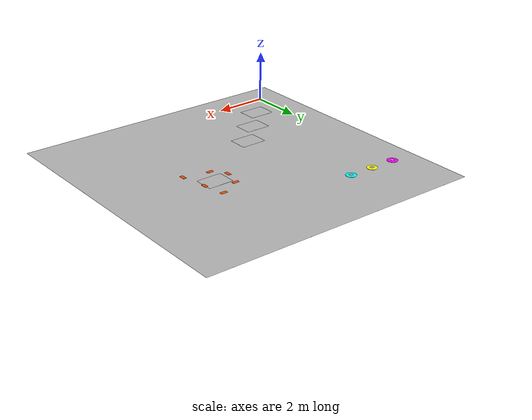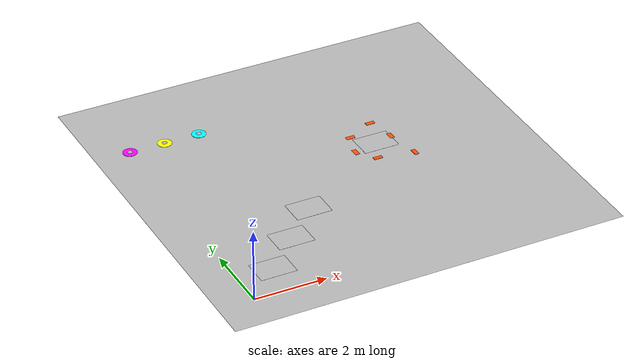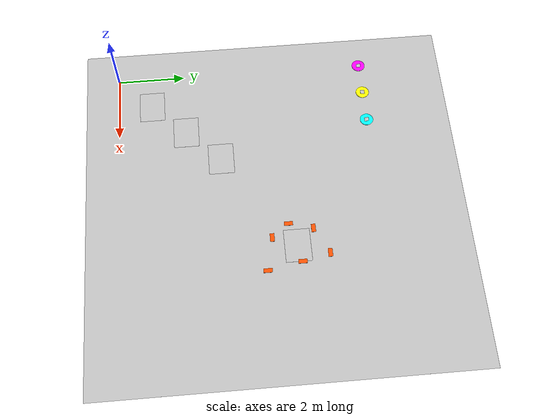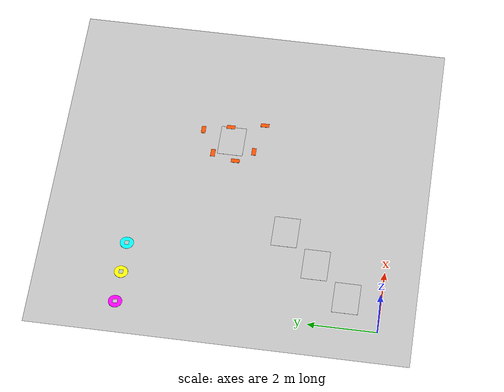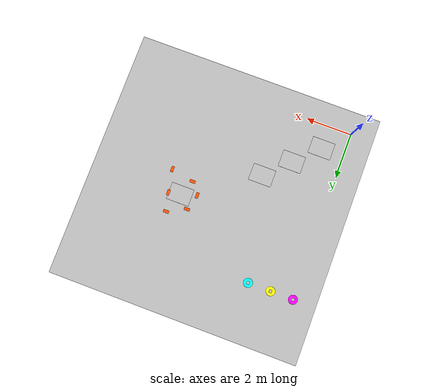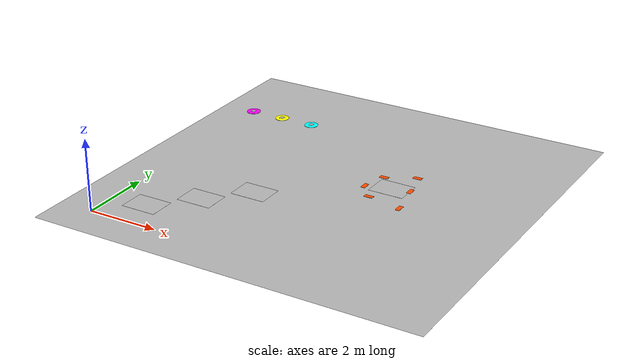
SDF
<sdf version="1.5">
 <world name="default">
  <include><uri>model://sun</uri></include>
  <include><uri>model://aruco_206</uri><pose>4.5 4.5 0 0 0 0</pose></include>
  <include><uri>model://aruco_201</uri><pose>6 5 0.005 0 0 0</pose></include>
  <include><uri>model://boat_a</uri><name>boat_a_1</name><pose>6.5 5.1 0 0 0 0</pose></include>
  <include><uri>model://boat_a</uri><name>boat_a_2</name><pose>6.3 5.9 0 0 0 1.5707963267948966</pose></include>
  <include><uri>model://boat_a</uri><name>boat_a_3</name><pose>5.3 4.8 0 0 0 0</pose></include>
  <include><uri>model://boat_a</uri><name>boat_a_4</name><pose>5.5 5.5 0 0 0 1.5707963267948966</pose></include>
  <include><uri>model://boat_a</uri><name>boat_a_5</name><pose>6.7 4.1 0 0 0 0</pose></include>
  <include><uri>model://boat_a</uri><name>boat_a_6</name><pose>5.7 4.3 0 0 0 1.5707963267948966</pose></include>
  <include><uri>model://aruco_203</uri><pose>0 7.5 0 0 0 0</pose></include>
  <include><uri>model://aruco_204</uri><pose>1 7.5 0 0 0 0</pose></include>
  <include><uri>model://aruco_205</uri><pose>2 7.5 0 0 0 0</pose></include>
  <include><uri>model://rus_flag2</uri><pose>1 1 0.01 0 0 0</pose></include>
  <include><uri>model://france_flag</uri><pose>2 2 0.01 0 0 0</pose></include>
  <include><uri>model://svets_flag</uri><pose>3 3 0.01 0 0 0</pose></include>
  <scene>
   <ambient>0.8 0.8 0.8 1</ambient>
   <background>0.8 0.9 1 1</background>
   <shadows>false</shadows>
   <grid>false</grid>
   <origin_visual>false</origin_visual>
  </scene>
  <physics name="default_physics" default="0" type="ode">
   <gravity>0 0 -9.8066</gravity>
   <ode>
    <solver>
     <type>quick</type>
     <iters>10</iters>
     <sor>1.3</sor>
     <use_dynamic_moi_rescaling>0</use_dynamic_moi_rescaling>
    </solver>
    <constraints>
     <cfm>0</cfm>
     <erp>0.2</erp>
     <contact_max_correcting_vel>100</contact_max_correcting_vel>
     <contact_surface_layer>0.001</contact_surface_layer>
    </constraints>
   </ode>
   <max_step_size>0.004</max_step_size>
   <real_time_factor>1</real_time_factor>
   <real_time_update_rate>250</real_time_update_rate>
   <magnetic_field>6.0e-6 2.3e-5 -4.2e-5</magnetic_field>
  </physics>
 </world>
</sdf>

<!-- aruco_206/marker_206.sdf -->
<sdf version="1.5">
    <model name="aruco_206">
        <static>true</static>
        <link name="marker_206_link">
            <pose>0 0 1e-3 0 0 1.5707963267948966</pose>
            <visual name="visual_marker_206">
                <cast_shadows>false</cast_shadows>
                <geometry>
                    <box>
                        <size>11 11 1e-4</size>
                    </box>
                </geometry>
                <material>
                    <script>
                        <uri>model://aruco_206/materials/scripts</uri>
                        <uri>model://aruco_206/materials/textures</uri>
                        <name>aruco/marker_206</name>
                    </script>
                </material>
            </visual>
        </link>
    </model>
</sdf>

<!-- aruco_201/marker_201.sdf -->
<sdf version="1.5">
  <model name="aruco_201">
    <static>true</static>
    <link name="marker_201_link">
      <pose>0 0 1e-3 0 0 1.5707963267948966</pose>
      <visual name="visual_marker_201">
        <cast_shadows>false</cast_shadows>
        <geometry>
          <box>
            <size>0.75 1 1e-3</size>
          </box>
        </geometry>
        <material>
          <script>
            <uri>model://aruco_201/materials/scripts</uri>
            <uri>model://aruco_201/materials/textures</uri>
            <name>aruco/marker_201</name>
          </script>
        </material>
      </visual>
    </link>
  </model>
</sdf>

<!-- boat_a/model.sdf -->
<sdf version='1.6'>
  <model name='boat_a'>
    <link name='link'>
      <inertial>
        <mass>1</mass>
        <inertia>
          <ixx>0.166667</ixx>
          <ixy>0</ixy>
          <ixz>0</ixz>
          <iyy>0.166667</iyy>
          <iyz>0</iyz>
          <izz>0.166667</izz>
        </inertia>
        <pose frame=''>0 0 0 0 -0 0</pose>
      </inertial>
      <self_collide>0</self_collide>
      <enable_wind>0</enable_wind>
      <kinematic>0</kinematic>
      <pose frame=''>0 0 0 0 -0 0</pose>
      <gravity>1</gravity>
      <visual name='visual'>
        <geometry>
          <box>
            <size>0.125 0.25 0.02</size>
          </box>
        </geometry>
        <material>
          <script>
            <name>Gazebo/Grey</name>
            <uri>file://media/materials/scripts/gazebo.material</uri>
          </script>
          <shader type='pixel'>
            <normal_map>__default__</normal_map>
          </shader>
          <ambient>1 0.3 0 1</ambient>
          <diffuse>1 0.3 0 1</diffuse>
          <specular>0 0 0 1</specular>
          <emissive>0 0 0 1</emissive>
        </material>
        <pose frame=''>0 0 0 0 -0 0</pose>
        <transparency>0</transparency>
        <cast_shadows>1</cast_shadows>
      </visual>
      <collision name='collision'>
        <laser_retro>0</laser_retro>
        <max_contacts>10</max_contacts>
        <pose frame=''>0 0 0 0 -0 0</pose>
        <geometry>
          <box>
            <size>0.125 0.25 0.02</size>
          </box>
        </geometry>
        <surface>
          <friction>
            <ode>
              <mu>1</mu>
              <mu2>1</mu2>
              <fdir1>0 0 0</fdir1>
              <slip1>0</slip1>
              <slip2>0</slip2>
            </ode>
            <torsional>
              <coefficient>1</coefficient>
              <patch_radius>0</patch_radius>
              <surface_radius>0</surface_radius>
              <use_patch_radius>1</use_patch_radius>
              <ode>
                <slip>0</slip>
              </ode>
            </torsional>
          </friction>
          <bounce>
            <restitution_coefficient>0</restitution_coefficient>
            <threshold>1e+06</threshold>
          </bounce>
          <contact>
            <collide_without_contact>0</collide_without_contact>
            <collide_without_contact_bitmask>1</collide_without_contact_bitmask>
            <collide_bitmask>1</collide_bitmask>
            <ode>
              <soft_cfm>0</soft_cfm>
              <soft_erp>0.2</soft_erp>
              <kp>1e+13</kp>
              <kd>1</kd>
              <max_vel>0.01</max_vel>
              <min_depth>0</min_depth>
            </ode>
            <bullet>
              <split_impulse>1</split_impulse>
              <split_impulse_penetration_threshold>-0.01</split_impulse_penetration_threshold>
              <soft_cfm>0</soft_cfm>
              <soft_erp>0.2</soft_erp>
              <kp>1e+13</kp>
              <kd>1</kd>
            </bullet>
          </contact>
        </surface>
      </collision>
    </link>
    <static>1</static>
    <allow_auto_disable>1</allow_auto_disable>
  </model>
</sdf>

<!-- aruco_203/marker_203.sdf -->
<sdf version="1.5">
  <model name="aruco_203">
    <static>true</static>
    <link name="marker_203_link">
      <pose>0 0 0.02 0 0 1.5707963267948966</pose>
      <visual name="visual_marker_203">
        <cast_shadows>false</cast_shadows>
        <geometry>
          <box>
            <size>0.125 0.125 1e-3</size>
          </box>
        </geometry>
        <material>
          <script>
            <uri>model://aruco_203/materials/scripts</uri>
            <uri>model://aruco_203/materials/textures</uri>
            <name>aruco/marker_203</name>
          </script>
        </material>
      </visual>
    </link>

    <link name='island'>
      <inertial>
        <mass>1</mass>
        <inertia>
          <ixx>0.145833</ixx>
          <ixy>0</ixy>
          <ixz>0</ixz>
          <iyy>0.145833</iyy>
          <iyz>0</iyz>
          <izz>0.125</izz>
        </inertia>
        <pose frame=''>0 0 0 0 -0 0</pose>
      </inertial>
      <self_collide>0</self_collide>
      <enable_wind>0</enable_wind>
      <kinematic>0</kinematic>
      <pose frame=''>0 0 0 0 -0 0</pose>
      <gravity>1</gravity>
      <visual name='visual'>
        <geometry>
          <cylinder>
            <radius>0.2</radius>
            <length>0.02</length>
          </cylinder>
        </geometry>
        <material>
          <script>
            <name>Gazebo/Grey</name>
            <uri>file://media/materials/scripts/gazebo.material</uri>
          </script>
          <shader type='pixel'>
            <normal_map>__default__</normal_map>
          </shader>
          <ambient>1 0 1 1</ambient>
          <diffuse>1 0 1 1</diffuse>
          <specular>0 0 0 1</specular>
          <emissive>0 0 0 1</emissive>
        </material>
        <pose frame=''>0 0 0 0 -0 0</pose>
        <transparency>0</transparency>
        <cast_shadows>1</cast_shadows>
      </visual>
      <collision name='collision'>
        <laser_retro>0</laser_retro>
        <max_contacts>10</max_contacts>
        <pose frame=''>0 0 0 0 -0 0</pose>
        <geometry>
          <cylinder>
            <radius>0.2</radius>
            <length>0.02</length>
          </cylinder>
        </geometry>
        <surface>
          <friction>
            <ode>
              <mu>1</mu>
              <mu2>1</mu2>
              <fdir1>0 0 0</fdir1>
              <slip1>0</slip1>
              <slip2>0</slip2>
            </ode>
            <torsional>
              <coefficient>1</coefficient>
              <patch_radius>0</patch_radius>
              <surface_radius>0</surface_radius>
              <use_patch_radius>1</use_patch_radius>
              <ode>
                <slip>0</slip>
              </ode>
            </torsional>
          </friction>
          <bounce>
            <restitution_coefficient>0</restitution_coefficient>
            <threshold>1e+06</threshold>
          </bounce>
          <contact>
            <collide_without_contact>0</collide_without_contact>
            <collide_without_contact_bitmask>1</collide_without_contact_bitmask>
            <collide_bitmask>1</collide_bitmask>
            <ode>
              <soft_cfm>0</soft_cfm>
              <soft_erp>0.2</soft_erp>
              <kp>1e+13</kp>
              <kd>1</kd>
              <max_vel>0.01</max_vel>
              <min_depth>0</min_depth>
            </ode>
            <bullet>
              <split_impulse>1</split_impulse>
              <split_impulse_penetration_threshold>-0.01</split_impulse_penetration_threshold>
              <soft_cfm>0</soft_cfm>
              <soft_erp>0.2</soft_erp>
              <kp>1e+13</kp>
              <kd>1</kd>
            </bullet>
          </contact>
        </surface>
      </collision>
    </link>

  </model>
</sdf>

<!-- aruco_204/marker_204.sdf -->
<sdf version="1.5">
  <model name="aruco_204">
    <static>true</static>
    <link name="marker_204_link">
      <pose>0 0 0.02 0 0 1.5707963267948966</pose>
      <visual name="visual_marker_204">
        <cast_shadows>false</cast_shadows>
        <geometry>
          <box>
            <size>0.125 0.125 1e-3</size>
          </box>
        </geometry>
        <material>
          <script>
            <uri>model://aruco_204/materials/scripts</uri>
            <uri>model://aruco_204/materials/textures</uri>
            <name>aruco/marker_204</name>
          </script>
        </material>
      </visual>
    </link>

    <link name='island'>
      <inertial>
        <mass>1</mass>
        <inertia>
          <ixx>0.145833</ixx>
          <ixy>0</ixy>
          <ixz>0</ixz>
          <iyy>0.145833</iyy>
          <iyz>0</iyz>
          <izz>0.125</izz>
        </inertia>
        <pose frame=''>0 0 0 0 -0 0</pose>
      </inertial>
      <self_collide>0</self_collide>
      <enable_wind>0</enable_wind>
      <kinematic>0</kinematic>
      <pose frame=''>0 0 0 0 -0 0</pose>
      <gravity>1</gravity>
      <visual name='visual'>
        <geometry>
          <cylinder>
            <radius>0.2</radius>
            <length>0.02</length>
          </cylinder>
        </geometry>
        <material>
          <script>
            <name>Gazebo/Grey</name>
            <uri>file://media/materials/scripts/gazebo.material</uri>
          </script>
          <shader type='pixel'>
            <normal_map>__default__</normal_map>
          </shader>
          <ambient>1 1 0 1</ambient>
          <diffuse>1 1 0 1</diffuse>
          <specular>0 0 0 1</specular>
          <emissive>0 0 0 1</emissive>
        </material>
        <pose frame=''>0 0 0 0 -0 0</pose>
        <transparency>0</transparency>
        <cast_shadows>1</cast_shadows>
      </visual>
      <collision name='collision'>
        <laser_retro>0</laser_retro>
        <max_contacts>10</max_contacts>
        <pose frame=''>0 0 0 0 -0 0</pose>
        <geometry>
          <cylinder>
            <radius>0.2</radius>
            <length>0.02</length>
          </cylinder>
        </geometry>
        <surface>
          <friction>
            <ode>
              <mu>1</mu>
              <mu2>1</mu2>
              <fdir1>0 0 0</fdir1>
              <slip1>0</slip1>
              <slip2>0</slip2>
            </ode>
            <torsional>
              <coefficient>1</coefficient>
              <patch_radius>0</patch_radius>
              <surface_radius>0</surface_radius>
              <use_patch_radius>1</use_patch_radius>
              <ode>
                <slip>0</slip>
              </ode>
            </torsional>
          </friction>
          <bounce>
            <restitution_coefficient>0</restitution_coefficient>
            <threshold>1e+06</threshold>
          </bounce>
          <contact>
            <collide_without_contact>0</collide_without_contact>
            <collide_without_contact_bitmask>1</collide_without_contact_bitmask>
            <collide_bitmask>1</collide_bitmask>
            <ode>
              <soft_cfm>0</soft_cfm>
              <soft_erp>0.2</soft_erp>
              <kp>1e+13</kp>
              <kd>1</kd>
              <max_vel>0.01</max_vel>
              <min_depth>0</min_depth>
            </ode>
            <bullet>
              <split_impulse>1</split_impulse>
              <split_impulse_penetration_threshold>-0.01</split_impulse_penetration_threshold>
              <soft_cfm>0</soft_cfm>
              <soft_erp>0.2</soft_erp>
              <kp>1e+13</kp>
              <kd>1</kd>
            </bullet>
          </contact>
        </surface>
      </collision>
    </link>

  </model>
</sdf>

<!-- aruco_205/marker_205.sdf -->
<sdf version="1.5">
  <model name="aruco_205">
    <static>true</static>
    <link name="marker_205_link">
      <pose>0 0 0.02 0 0 1.5707963267948966</pose>
      <visual name="visual_marker_205">
        <cast_shadows>false</cast_shadows>
        <geometry>
          <box>
            <size>0.125 0.125 1e-3</size>
          </box>
        </geometry>
        <material>
          <script>
            <uri>model://aruco_205/materials/scripts</uri>
            <uri>model://aruco_205/materials/textures</uri>
            <name>aruco/marker_205</name>
          </script>
        </material>
      </visual>
    </link>

    <link name='island'>
      <inertial>
        <mass>1</mass>
        <inertia>
          <ixx>0.145833</ixx>
          <ixy>0</ixy>
          <ixz>0</ixz>
          <iyy>0.145833</iyy>
          <iyz>0</iyz>
          <izz>0.125</izz>
        </inertia>
        <pose frame=''>0 0 0 0 -0 0</pose>
      </inertial>
      <self_collide>0</self_collide>
      <enable_wind>0</enable_wind>
      <kinematic>0</kinematic>
      <pose frame=''>0 0 0 0 -0 0</pose>
      <gravity>1</gravity>
      <visual name='visual'>
        <geometry>
          <cylinder>
            <radius>0.2</radius>
            <length>0.02</length>
          </cylinder>
        </geometry>
        <material>
          <script>
            <name>Gazebo/Grey</name>
            <uri>file://media/materials/scripts/gazebo.material</uri>
          </script>
          <shader type='pixel'>
            <normal_map>__default__</normal_map>
          </shader>
          <ambient>0 1 1 1</ambient>
          <diffuse>0 1 1 1</diffuse>
          <specular>0 0 0 1</specular>
          <emissive>0 0 0 1</emissive>
        </material>
        <pose frame=''>0 0 0 0 -0 0</pose>
        <transparency>0</transparency>
        <cast_shadows>1</cast_shadows>
      </visual>
      <collision name='collision'>
        <laser_retro>0</laser_retro>
        <max_contacts>10</max_contacts>
        <pose frame=''>0 0 0 0 -0 0</pose>
        <geometry>
          <cylinder>
            <radius>0.2</radius>
            <length>0.02</length>
          </cylinder>
        </geometry>
        <surface>
          <friction>
            <ode>
              <mu>1</mu>
              <mu2>1</mu2>
              <fdir1>0 0 0</fdir1>
              <slip1>0</slip1>
              <slip2>0</slip2>
            </ode>
            <torsional>
              <coefficient>1</coefficient>
              <patch_radius>0</patch_radius>
              <surface_radius>0</surface_radius>
              <use_patch_radius>1</use_patch_radius>
              <ode>
                <slip>0</slip>
              </ode>
            </torsional>
          </friction>
          <bounce>
            <restitution_coefficient>0</restitution_coefficient>
            <threshold>1e+06</threshold>
          </bounce>
          <contact>
            <collide_without_contact>0</collide_without_contact>
            <collide_without_contact_bitmask>1</collide_without_contact_bitmask>
            <collide_bitmask>1</collide_bitmask>
            <ode>
              <soft_cfm>0</soft_cfm>
              <soft_erp>0.2</soft_erp>
              <kp>1e+13</kp>
              <kd>1</kd>
              <max_vel>0.01</max_vel>
              <min_depth>0</min_depth>
            </ode>
            <bullet>
              <split_impulse>1</split_impulse>
              <split_impulse_penetration_threshold>-0.01</split_impulse_penetration_threshold>
              <soft_cfm>0</soft_cfm>
              <soft_erp>0.2</soft_erp>
              <kp>1e+13</kp>
              <kd>1</kd>
            </bullet>
          </contact>
        </surface>
      </collision>
    </link>

  </model>
</sdf>

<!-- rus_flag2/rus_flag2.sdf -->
<sdf version="1.5">
  <model name="rus_flag2">
    <static>true</static>
    <link name="rus_flag2_link">
      <pose>0 0 1e-3 0 0 1.5707963267948966</pose>
      <visual name="visual_rus_flag2">
        <cast_shadows>false</cast_shadows>
        <geometry>
          <box>
            <size>0.75 1 1e-3</size>
          </box>
        </geometry>
        <material>
          <script>
            <uri>model://rus_flag2/materials/scripts</uri>
            <uri>model://rus_flag2/materials/textures</uri>
            <name>aruco/rus_flag2</name>
          </script>
        </material>
      </visual>
    </link>
  </model>
</sdf>

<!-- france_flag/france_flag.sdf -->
<sdf version="1.5">
  <model name="france_flag">
    <static>true</static>
    <link name="rus_flag2_link">
      <pose>0 0 1e-3 0 0 1.5707963267948966</pose>
      <visual name="visual_france_flag">
        <cast_shadows>false</cast_shadows>
        <geometry>
          <box>
            <size>0.75 1 1e-3</size>
          </box>
        </geometry>
        <material>
          <script>
            <uri>model://france_flag/materials/scripts</uri>
            <uri>model://france_flag/materials/textures</uri>
            <name>aruco/france_flag</name>
          </script>
        </material>
      </visual>
    </link>
  </model>
</sdf>

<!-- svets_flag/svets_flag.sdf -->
<sdf version="1.5">
  <model name="svets_flag">
    <static>true</static>
    <link name="rus_flag2_link">
      <pose>0 0 1e-3 0 0 1.5707963267948966</pose>
      <visual name="visual_svets_flag">
        <cast_shadows>false</cast_shadows>
        <geometry>
          <box>
            <size>0.75 1 1e-3</size>
          </box>
        </geometry>
        <material>
          <script>
            <uri>model://svets_flag/materials/scripts</uri>
            <uri>model://svets_flag/materials/textures</uri>
            <name>aruco/svets_flag</name>
          </script>
        </material>
      </visual>
    </link>
  </model>
</sdf>
